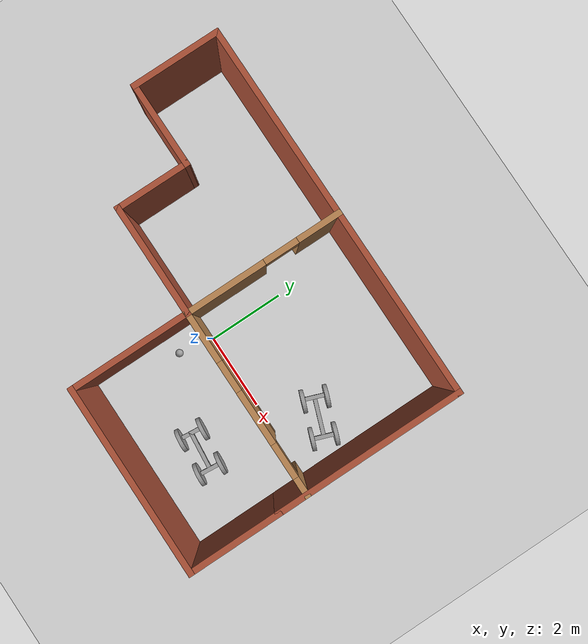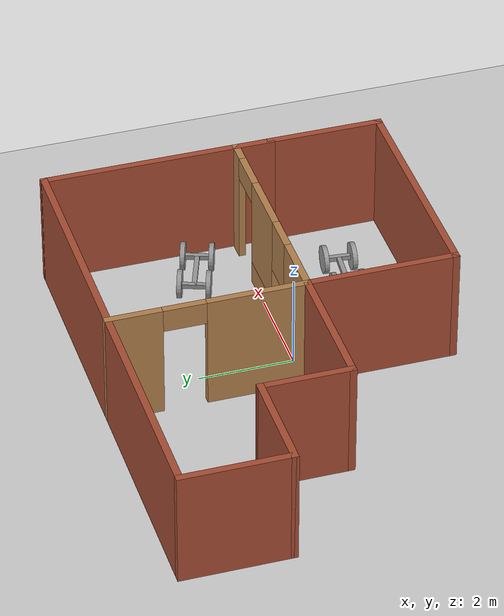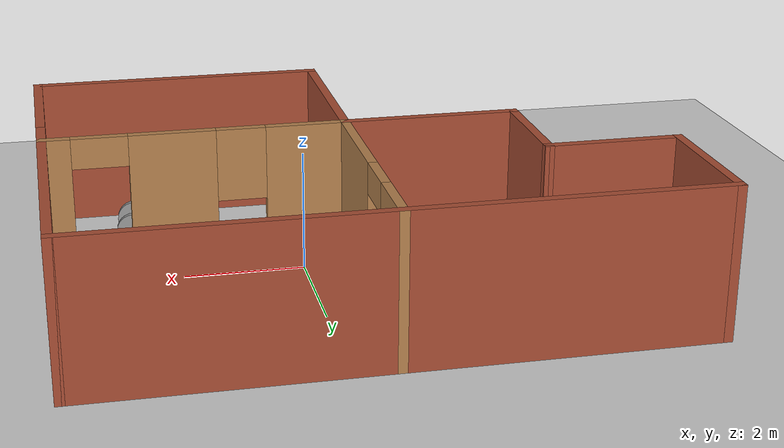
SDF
<sdf version="1.6">
 <world name="__default__">
  <plugin name="hello" filename="libhello.so"/>
  <gravity>0 0 -9.8</gravity>
  <magnetic_field>6e-06 2.3e-05 -4.2e-05</magnetic_field>
  <atmosphere type="adiabatic"/>
  <physics name="default_physics" default="0" type="ode">
   <max_step_size>0.001</max_step_size>
   <real_time_factor>1</real_time_factor>
   <real_time_update_rate>1000</real_time_update_rate>
  </physics>
  <scene><ambient>0.4 0.4 0.4 1</ambient><background>0.7 0.7 0.7 1</background><shadows>1</shadows></scene>
  <spherical_coordinates>
   <surface_model>EARTH_WGS84</surface_model>
   <latitude_deg>0</latitude_deg>
   <longitude_deg>0</longitude_deg>
   <elevation>0</elevation>
   <heading_deg>0</heading_deg>
  </spherical_coordinates>
  <model name="mybuilding">
   <pose>-0.78249 0.44973 0 0 -0 0</pose>
   <link name="Wall_10">
    <collision name="Wall_10_Collision">
     <geometry><box><size>2.30025 0.15 2.5</size></box></geometry>
     <pose>0 0 1.25 0 -0 0</pose>
    </collision>
    <visual name="Wall_10_Visual">
     <pose>0 0 1.25 0 -0 0</pose>
     <geometry><box><size>2.30025 0.15 2.5</size></box></geometry>
     <material>
      <script><uri>file://media/materials/scripts/gazebo.material</uri><name>Gazebo/Bricks</name></script>
      <ambient>1 1 1 1</ambient>
     </material>
     <meta><layer>0</layer></meta>
    </visual>
    <pose>-3.84999 1.34978 0 0 0 -3.14139</pose>
   </link>
   <link name="Wall_11">
    <collision name="Wall_11_Collision">
     <geometry><box><size>2.40056 0.15 2.5</size></box></geometry>
     <pose>0 0 1.25 0 -0 0</pose>
    </collision>
    <visual name="Wall_11_Visual">
     <pose>0 0 1.25 0 -0 0</pose>
     <geometry><box><size>2.40056 0.15 2.5</size></box></geometry>
     <material>
      <script><uri>file://media/materials/scripts/gazebo.material</uri><name>Gazebo/Bricks</name></script>
      <ambient>1 1 1 1</ambient>
     </material>
     <meta><layer>0</layer></meta>
    </visual>
    <pose>-4.92512 2.47456 0 0 -0 1.5708</pose>
   </link>
   <link name="Wall_13">
    <pose>2.50013 -0.500002 0 0 -0 0</pose>
    <visual name="Wall_13_Visual_0">
     <pose>-1.80816 0 1.25 0 -0 0</pose>
     <geometry><box><size>1.38368 0.15 2.5</size></box></geometry>
     <material>
      <script><uri>file://media/materials/scripts/gazebo.material</uri><name>Gazebo/Wood</name></script>
      <ambient>1 1 1 1</ambient>
     </material>
     <meta><layer>0</layer></meta>
    </visual>
    <collision name="Wall_13_Collision_0">
     <geometry><box><size>1.38368 0.15 2.5</size></box></geometry>
     <pose>-1.80816 0 1.25 0 -0 0</pose>
    </collision>
    <visual name="Wall_13_Visual_1">
     <pose>2.24096 0 1.25 0 -0 0</pose>
     <geometry><box><size>0.518074 0.15 2.5</size></box></geometry>
     <material>
      <script><uri>file://media/materials/scripts/gazebo.material</uri><name>Gazebo/Wood</name></script>
      <ambient>1 1 1 1</ambient>
     </material>
     <meta><layer>0</layer></meta>
    </visual>
    <collision name="Wall_13_Collision_1">
     <geometry><box><size>0.518074 0.15 2.5</size></box></geometry>
     <pose>2.24096 0 1.25 0 -0 0</pose>
    </collision>
    <visual name="Wall_13_Visual_2">
     <pose>-0.017199 0 0.25 0 -0 0</pose>
     <geometry><box><size>2.19825 0.15 0.5</size></box></geometry>
     <material>
      <script><uri>file://media/materials/scripts/gazebo.material</uri><name>Gazebo/Wood</name></script>
      <ambient>1 1 1 1</ambient>
     </material>
     <meta><layer>0</layer></meta>
    </visual>
    <collision name="Wall_13_Collision_2">
     <geometry><box><size>2.19825 0.15 0.5</size></box></geometry>
     <pose>-0.017199 0 0.25 0 -0 0</pose>
    </collision>
    <visual name="Wall_13_Visual_3">
     <pose>0.382801 0 1.5 0 -0 0</pose>
     <geometry><box><size>1.39825 0.15 2</size></box></geometry>
     <material>
      <script><uri>file://media/materials/scripts/gazebo.material</uri><name>Gazebo/Wood</name></script>
      <ambient>1 1 1 1</ambient>
     </material>
     <meta><layer>0</layer></meta>
    </visual>
    <collision name="Wall_13_Collision_3">
     <geometry><box><size>1.39825 0.15 2</size></box></geometry>
     <pose>0.382801 0 1.5 0 -0 0</pose>
    </collision>
    <visual name="Wall_13_Visual_4">
     <pose>-0.716324 0 1.9 0 -0 0</pose>
     <geometry><box><size>0.8 0.15 1.2</size></box></geometry>
     <material>
      <script><uri>file://media/materials/scripts/gazebo.material</uri><name>Gazebo/Wood</name></script>
      <ambient>1 1 1 1</ambient>
     </material>
     <meta><layer>0</layer></meta>
    </visual>
    <collision name="Wall_13_Collision_4">
     <geometry><box><size>0.8 0.15 1.2</size></box></geometry>
     <pose>-0.716324 0 1.9 0 -0 0</pose>
    </collision>
    <visual name="Wall_13_Visual_5">
     <pose>1.53193 0 2.25 0 -0 0</pose>
     <geometry><box><size>0.9 0.15 0.5</size></box></geometry>
     <material>
      <script><uri>file://media/materials/scripts/gazebo.material</uri><name>Gazebo/Wood</name></script>
      <ambient>1 1 1 1</ambient>
     </material>
     <meta><layer>0</layer></meta>
    </visual>
    <collision name="Wall_13_Collision_5">
     <geometry><box><size>0.9 0.15 0.5</size></box></geometry>
     <pose>1.53193 0 2.25 0 -0 0</pose>
    </collision>
   </link>
   <link name="Wall_15">
    <pose>0.075133 1.55 0 0 -0 1.5708</pose>
    <visual name="Wall_15_Visual_0">
     <pose>-1.04383 0 1.25 0 -0 0</pose>
     <geometry><box><size>2.16234 0.15 2.5</size></box></geometry>
     <material>
      <script><uri>file://media/materials/scripts/gazebo.material</uri><name>Gazebo/Wood</name></script>
      <ambient>1 1 1 1</ambient>
     </material>
     <meta><layer>0</layer></meta>
    </visual>
    <collision name="Wall_15_Collision_0">
     <geometry><box><size>2.16234 0.15 2.5</size></box></geometry>
     <pose>-1.04383 0 1.25 0 -0 0</pose>
    </collision>
    <visual name="Wall_15_Visual_1">
     <pose>1.53117 0 1.25 0 -0 0</pose>
     <geometry><box><size>1.18766 0.15 2.5</size></box></geometry>
     <material>
      <script><uri>file://media/materials/scripts/gazebo.material</uri><name>Gazebo/Wood</name></script>
      <ambient>1 1 1 1</ambient>
     </material>
     <meta><layer>0</layer></meta>
    </visual>
    <collision name="Wall_15_Collision_1">
     <geometry><box><size>1.18766 0.15 2.5</size></box></geometry>
     <pose>1.53117 0 1.25 0 -0 0</pose>
    </collision>
    <visual name="Wall_15_Visual_2">
     <pose>0.487335 0 2.25 0 -0 0</pose>
     <geometry><box><size>0.9 0.15 0.5</size></box></geometry>
     <material>
      <script><uri>file://media/materials/scripts/gazebo.material</uri><name>Gazebo/Wood</name></script>
      <ambient>1 1 1 1</ambient>
     </material>
     <meta><layer>0</layer></meta>
    </visual>
    <collision name="Wall_15_Collision_2">
     <geometry><box><size>0.9 0.15 0.5</size></box></geometry>
     <pose>0.487335 0 2.25 0 -0 0</pose>
    </collision>
   </link>
   <link name="Wall_3">
    <collision name="Wall_3_Collision">
     <geometry><box><size>10 0.15 2.5</size></box></geometry>
     <pose>0 0 1.25 0 -0 0</pose>
    </collision>
    <visual name="Wall_3_Visual">
     <pose>0 0 1.25 0 -0 0</pose>
     <geometry><box><size>10 0.15 2.5</size></box></geometry>
     <material>
      <script><uri>file://media/materials/scripts/gazebo.material</uri><name>Gazebo/Bricks</name></script>
      <ambient>1 1 1 1</ambient>
     </material>
     <meta><layer>0</layer></meta>
    </visual>
    <pose>8e-06 3.59978 0 0 -0 4.5e-05</pose>
   </link>
   <link name="Wall_4">
    <collision name="Wall_4_Collision">
     <geometry><box><size>5 0.15 2.5</size></box></geometry>
     <pose>0 0 1.25 0 -0 0</pose>
    </collision>
    <visual name="Wall_4_Visual">
     <pose>0 0 1.25 0 -0 0</pose>
     <geometry><box><size>5 0.15 2.5</size></box></geometry>
     <material>
      <script><uri>file://media/materials/scripts/gazebo.material</uri><name>Gazebo/Bricks</name></script>
      <ambient>1 1 1 1</ambient>
     </material>
     <meta><layer>0</layer></meta>
    </visual>
    <pose>4.92513 1.175 0 0 0 -1.5708</pose>
   </link>
   <link name="Wall_5">
    <collision name="Wall_5_Collision">
     <geometry><box><size>2.5 0.15 2.5</size></box></geometry>
     <pose>0 0 1.25 0 -0 0</pose>
    </collision>
    <visual name="Wall_5_Visual">
     <pose>0 0 1.25 0 -0 0</pose>
     <geometry><box><size>2.5 0.15 2.5</size></box></geometry>
     <material>
      <script><uri>file://media/materials/scripts/gazebo.material</uri><name>Gazebo/Bricks</name></script>
      <ambient>1 1 1 1</ambient>
     </material>
     <meta><layer>0</layer></meta>
    </visual>
    <pose>4.92513 -2.425 0 0 0 -1.5708</pose>
   </link>
   <link name="Wall_6">
    <collision name="Wall_6_Collision">
     <geometry><box><size>5 0.15 2.5</size></box></geometry>
     <pose>0 0 1.25 0 -0 0</pose>
    </collision>
    <visual name="Wall_6_Visual">
     <pose>0 0 1.25 0 -0 0</pose>
     <geometry><box><size>5 0.15 2.5</size></box></geometry>
     <material>
      <script><uri>file://media/materials/scripts/gazebo.material</uri><name>Gazebo/Bricks</name></script>
      <ambient>1 1 1 1</ambient>
     </material>
     <meta><layer>0</layer></meta>
    </visual>
    <pose>2.50013 -3.6 0 0 -0 3.14159</pose>
   </link>
   <link name="Wall_7">
    <collision name="Wall_7_Collision">
     <geometry><box><size>3.25 0.15 2.5</size></box></geometry>
     <pose>0 0 1.25 0 -0 0</pose>
    </collision>
    <visual name="Wall_7_Visual">
     <pose>0 0 1.25 0 -0 0</pose>
     <geometry><box><size>3.25 0.15 2.5</size></box></geometry>
     <material>
      <script><uri>file://media/materials/scripts/gazebo.material</uri><name>Gazebo/Bricks</name></script>
      <ambient>1 1 1 1</ambient>
     </material>
     <meta><layer>0</layer></meta>
    </visual>
    <pose>0.075133 -2.05 0 0 -0 1.5708</pose>
   </link>
   <link name="Wall_8">
    <collision name="Wall_8_Collision">
     <geometry><box><size>3 0.15 2.5</size></box></geometry>
     <pose>0 0 1.25 0 -0 0</pose>
    </collision>
    <visual name="Wall_8_Visual">
     <pose>0 0 1.25 0 -0 0</pose>
     <geometry><box><size>3 0.15 2.5</size></box></geometry>
     <material>
      <script><uri>file://media/materials/scripts/gazebo.material</uri><name>Gazebo/Bricks</name></script>
      <ambient>1 1 1 1</ambient>
     </material>
     <meta><layer>0</layer></meta>
    </visual>
    <pose>-1.34987 -0.500002 0 0 -0 3.14159</pose>
   </link>
   <link name="Wall_9">
    <collision name="Wall_9_Collision">
     <geometry><box><size>2 0.15 2.5</size></box></geometry>
     <pose>0 0 1.25 0 -0 0</pose>
    </collision>
    <visual name="Wall_9_Visual">
     <pose>0 0 1.25 0 -0 0</pose>
     <geometry><box><size>2 0.15 2.5</size></box></geometry>
     <material>
      <script><uri>file://media/materials/scripts/gazebo.material</uri><name>Gazebo/Bricks</name></script>
      <ambient>1 1 1 1</ambient>
     </material>
     <meta><layer>0</layer></meta>
    </visual>
    <pose>-2.77487 0.424998 0 0 -0 1.5708</pose>
   </link>
   <static>1</static>
  </model>
  <model name="myrobot">
   <link name="link_0">
    <pose>-1.72766 -2.77958 0.3 0 -0 0</pose>
    <inertial>
     <mass>1</mass>
     <inertia>
      <ixx>0.166667</ixx>
      <ixy>0</ixy>
      <ixz>0</ixz>
      <iyy>0.166667</iyy>
      <iyz>0</iyz>
      <izz>0.166667</izz>
     </inertia>
    </inertial>
    <visual name="visual">
     <geometry><box><size>0.1 0.5 0.1</size></box></geometry>
     <material>
      <lighting>1</lighting>
      <script><uri>file://media/materials/scripts/gazebo.material</uri><name>Gazebo/Grey</name></script>
      <shader type="pixel"><normal_map>__default__</normal_map></shader>
      <ambient>0.3 0.3 0.3 1</ambient>
      <diffuse>0.7 0.7 0.7 1</diffuse>
      <specular>0.01 0.01 0.01 1</specular>
      <emissive>0 0 0 1</emissive>
     </material>
    </visual>
    <collision name="collision">
     <geometry><box><size>0.1 0.5 0.1</size></box></geometry>
     <surface>
      <friction>
       <ode><mu>1</mu><mu2>1</mu2><fdir1>0 0 0</fdir1><slip1>0</slip1><slip2>0</slip2></ode>
       <torsional>
        <coefficient>1</coefficient>
        <patch_radius>0</patch_radius>
        <surface_radius>0</surface_radius>
        <use_patch_radius>1</use_patch_radius>
        <ode><slip>0</slip></ode>
       </torsional>
      </friction>
      <bounce><restitution_coefficient>0</restitution_coefficient><threshold>1e+06</threshold></bounce>
      <contact>
       <collide_without_contact>0</collide_without_contact>
       <collide_without_contact_bitmask>1</collide_without_contact_bitmask>
       <collide_bitmask>1</collide_bitmask>
       <ode>
        <soft_cfm>0</soft_cfm>
        <soft_erp>0.2</soft_erp>
        <kp>1e+13</kp>
        <kd>1</kd>
        <max_vel>0.01</max_vel>
        <min_depth>0</min_depth>
       </ode>
       <bullet>
        <split_impulse>1</split_impulse>
        <split_impulse_penetration_threshold>-0.01</split_impulse_penetration_threshold>
        <soft_cfm>0</soft_cfm>
        <soft_erp>0.2</soft_erp>
        <kp>1e+13</kp>
        <kd>1</kd>
       </bullet>
      </contact>
     </surface>
    </collision>
   </link>
   <link name="link_0_clone">
    <pose>-0.727578 -2.77958 0.3 0 -0 0</pose>
    <inertial>
     <mass>1</mass>
     <inertia>
      <ixx>0.166667</ixx>
      <ixy>0</ixy>
      <ixz>0</ixz>
      <iyy>0.166667</iyy>
      <iyz>0</iyz>
      <izz>0.166667</izz>
     </inertia>
    </inertial>
    <visual name="visual">
     <geometry><box><size>0.1 0.5 0.1</size></box></geometry>
     <material>
      <lighting>1</lighting>
      <script><uri>file://media/materials/scripts/gazebo.material</uri><name>Gazebo/Grey</name></script>
      <shader type="pixel"><normal_map>__default__</normal_map></shader>
      <ambient>0.3 0.3 0.3 1</ambient>
      <diffuse>0.7 0.7 0.7 1</diffuse>
      <specular>0.01 0.01 0.01 1</specular>
      <emissive>0 0 0 1</emissive>
     </material>
    </visual>
    <collision name="collision">
     <geometry><box><size>0.1 0.5 0.1</size></box></geometry>
     <surface>
      <friction>
       <ode><mu>1</mu><mu2>1</mu2><fdir1>0 0 0</fdir1><slip1>0</slip1><slip2>0</slip2></ode>
       <torsional>
        <coefficient>1</coefficient>
        <patch_radius>0</patch_radius>
        <surface_radius>0</surface_radius>
        <use_patch_radius>1</use_patch_radius>
        <ode><slip>0</slip></ode>
       </torsional>
      </friction>
      <bounce><restitution_coefficient>0</restitution_coefficient><threshold>1e+06</threshold></bounce>
      <contact>
       <collide_without_contact>0</collide_without_contact>
       <collide_without_contact_bitmask>1</collide_without_contact_bitmask>
       <collide_bitmask>1</collide_bitmask>
       <ode>
        <soft_cfm>0</soft_cfm>
        <soft_erp>0.2</soft_erp>
        <kp>1e+13</kp>
        <kd>1</kd>
        <max_vel>0.01</max_vel>
        <min_depth>0</min_depth>
       </ode>
       <bullet>
        <split_impulse>1</split_impulse>
        <split_impulse_penetration_threshold>-0.01</split_impulse_penetration_threshold>
        <soft_cfm>0</soft_cfm>
        <soft_erp>0.2</soft_erp>
        <kp>1e+13</kp>
        <kd>1</kd>
       </bullet>
      </contact>
     </surface>
    </collision>
   </link>
   <link name="link_1">
    <pose>-1.68266 -3.0796 0.3 1.5707 -0 0</pose>
    <inertial>
     <mass>1</mass>
     <inertia><ixx>0.145833</ixx><ixy>0</ixy><ixz>0</ixz><iyy>0.145833</iyy><iyz>0</iyz><izz>0.125</izz></inertia>
     <pose>0 0 -0.05 1.5707 -0 0</pose>
    </inertial>
    <visual name="visual">
     <geometry><cylinder><radius>0.3</radius><length>0.1</length></cylinder></geometry>
     <material>
      <lighting>1</lighting>
      <script><uri>file://media/materials/scripts/gazebo.material</uri><name>Gazebo/Grey</name></script>
      <shader type="pixel"><normal_map>__default__</normal_map></shader>
      <ambient>0.3 0.3 0.3 1</ambient>
      <diffuse>0.7 0.7 0.7 1</diffuse>
      <specular>0.01 0.01 0.01 1</specular>
      <emissive>0 0 0 1</emissive>
     </material>
    </visual>
    <collision name="collision">
     <geometry><cylinder><radius>0.3</radius><length>0.1</length></cylinder></geometry>
     <surface>
      <friction>
       <ode><mu>1</mu><mu2>1</mu2><fdir1>0 0 0</fdir1><slip1>0</slip1><slip2>0</slip2></ode>
       <torsional>
        <coefficient>1</coefficient>
        <patch_radius>0</patch_radius>
        <surface_radius>0</surface_radius>
        <use_patch_radius>1</use_patch_radius>
        <ode><slip>0</slip></ode>
       </torsional>
      </friction>
      <bounce><restitution_coefficient>0</restitution_coefficient><threshold>1e+06</threshold></bounce>
      <contact>
       <collide_without_contact>0</collide_without_contact>
       <collide_without_contact_bitmask>1</collide_without_contact_bitmask>
       <collide_bitmask>1</collide_bitmask>
       <ode>
        <soft_cfm>0</soft_cfm>
        <soft_erp>0.2</soft_erp>
        <kp>1e+13</kp>
        <kd>1</kd>
        <max_vel>0.01</max_vel>
        <min_depth>0</min_depth>
       </ode>
       <bullet>
        <split_impulse>1</split_impulse>
        <split_impulse_penetration_threshold>-0.01</split_impulse_penetration_threshold>
        <soft_cfm>0</soft_cfm>
        <soft_erp>0.2</soft_erp>
        <kp>1e+13</kp>
        <kd>1</kd>
       </bullet>
      </contact>
     </surface>
    </collision>
   </link>
   <link name="link_1_clone">
    <pose>-1.68266 -2.47955 0.3 1.5707 -0 0</pose>
    <inertial>
     <mass>1</mass>
     <inertia><ixx>0.145833</ixx><ixy>0</ixy><ixz>0</ixz><iyy>0.145833</iyy><iyz>0</iyz><izz>0.125</izz></inertia>
     <pose>0 0 -0.05 1.5707 -0 0</pose>
    </inertial>
    <visual name="visual">
     <geometry><cylinder><radius>0.3</radius><length>0.1</length></cylinder></geometry>
     <material>
      <lighting>1</lighting>
      <script><uri>file://media/materials/scripts/gazebo.material</uri><name>Gazebo/Grey</name></script>
      <shader type="pixel"><normal_map>__default__</normal_map></shader>
      <ambient>0.3 0.3 0.3 1</ambient>
      <diffuse>0.7 0.7 0.7 1</diffuse>
      <specular>0.01 0.01 0.01 1</specular>
      <emissive>0 0 0 1</emissive>
     </material>
    </visual>
    <collision name="collision">
     <geometry><cylinder><radius>0.3</radius><length>0.1</length></cylinder></geometry>
     <surface>
      <friction>
       <ode><mu>1</mu><mu2>1</mu2><fdir1>0 0 0</fdir1><slip1>0</slip1><slip2>0</slip2></ode>
       <torsional>
        <coefficient>1</coefficient>
        <patch_radius>0</patch_radius>
        <surface_radius>0</surface_radius>
        <use_patch_radius>1</use_patch_radius>
        <ode><slip>0</slip></ode>
       </torsional>
      </friction>
      <bounce><restitution_coefficient>0</restitution_coefficient><threshold>1e+06</threshold></bounce>
      <contact>
       <collide_without_contact>0</collide_without_contact>
       <collide_without_contact_bitmask>1</collide_without_contact_bitmask>
       <collide_bitmask>1</collide_bitmask>
       <ode>
        <soft_cfm>0</soft_cfm>
        <soft_erp>0.2</soft_erp>
        <kp>1e+13</kp>
        <kd>1</kd>
        <max_vel>0.01</max_vel>
        <min_depth>0</min_depth>
       </ode>
       <bullet>
        <split_impulse>1</split_impulse>
        <split_impulse_penetration_threshold>-0.01</split_impulse_penetration_threshold>
        <soft_cfm>0</soft_cfm>
        <soft_erp>0.2</soft_erp>
        <kp>1e+13</kp>
        <kd>1</kd>
       </bullet>
      </contact>
     </surface>
    </collision>
   </link>
   <link name="link_1_clone_0">
    <pose>-0.727578 -2.47955 0.3 1.5707 -0 0</pose>
    <inertial>
     <mass>1</mass>
     <inertia><ixx>0.145833</ixx><ixy>0</ixy><ixz>0</ixz><iyy>0.145833</iyy><iyz>0</iyz><izz>0.125</izz></inertia>
     <pose>0 0 -0.05 1.5707 -0 0</pose>
    </inertial>
    <visual name="visual">
     <geometry><cylinder><radius>0.3</radius><length>0.1</length></cylinder></geometry>
     <material>
      <lighting>1</lighting>
      <script><uri>file://media/materials/scripts/gazebo.material</uri><name>Gazebo/Grey</name></script>
      <shader type="pixel"><normal_map>__default__</normal_map></shader>
      <ambient>0.3 0.3 0.3 1</ambient>
      <diffuse>0.7 0.7 0.7 1</diffuse>
      <specular>0.01 0.01 0.01 1</specular>
      <emissive>0 0 0 1</emissive>
     </material>
    </visual>
    <collision name="collision">
     <geometry><cylinder><radius>0.3</radius><length>0.1</length></cylinder></geometry>
     <surface>
      <friction>
       <ode><mu>1</mu><mu2>1</mu2><fdir1>0 0 0</fdir1><slip1>0</slip1><slip2>0</slip2></ode>
       <torsional>
        <coefficient>1</coefficient>
        <patch_radius>0</patch_radius>
        <surface_radius>0</surface_radius>
        <use_patch_radius>1</use_patch_radius>
        <ode><slip>0</slip></ode>
       </torsional>
      </friction>
      <bounce><restitution_coefficient>0</restitution_coefficient><threshold>1e+06</threshold></bounce>
      <contact>
       <collide_without_contact>0</collide_without_contact>
       <collide_without_contact_bitmask>1</collide_without_contact_bitmask>
       <collide_bitmask>1</collide_bitmask>
       <ode>
        <soft_cfm>0</soft_cfm>
        <soft_erp>0.2</soft_erp>
        <kp>1e+13</kp>
        <kd>1</kd>
        <max_vel>0.01</max_vel>
        <min_depth>0</min_depth>
       </ode>
       <bullet>
        <split_impulse>1</split_impulse>
        <split_impulse_penetration_threshold>-0.01</split_impulse_penetration_threshold>
        <soft_cfm>0</soft_cfm>
        <soft_erp>0.2</soft_erp>
        <kp>1e+13</kp>
        <kd>1</kd>
       </bullet>
      </contact>
     </surface>
    </collision>
   </link>
   <link name="link_1_clone_1">
    <pose>-0.727578 -3.0796 0.3 1.5707 -0 0</pose>
    <inertial>
     <mass>1</mass>
     <inertia><ixx>0.145833</ixx><ixy>0</ixy><ixz>0</ixz><iyy>0.145833</iyy><iyz>0</iyz><izz>0.125</izz></inertia>
     <pose>0 0 -0.05 1.5707 -0 0</pose>
    </inertial>
    <visual name="visual">
     <geometry><cylinder><radius>0.3</radius><length>0.1</length></cylinder></geometry>
     <material>
      <lighting>1</lighting>
      <script><uri>file://media/materials/scripts/gazebo.material</uri><name>Gazebo/Grey</name></script>
      <shader type="pixel"><normal_map>__default__</normal_map></shader>
      <ambient>0.3 0.3 0.3 1</ambient>
      <diffuse>0.7 0.7 0.7 1</diffuse>
      <specular>0.01 0.01 0.01 1</specular>
      <emissive>0 0 0 1</emissive>
     </material>
    </visual>
    <collision name="collision">
     <geometry><cylinder><radius>0.3</radius><length>0.1</length></cylinder></geometry>
     <surface>
      <friction>
       <ode><mu>1</mu><mu2>1</mu2><fdir1>0 0 0</fdir1><slip1>0</slip1><slip2>0</slip2></ode>
       <torsional>
        <coefficient>1</coefficient>
        <patch_radius>0</patch_radius>
        <surface_radius>0</surface_radius>
        <use_patch_radius>1</use_patch_radius>
        <ode><slip>0</slip></ode>
       </torsional>
      </friction>
      <bounce><restitution_coefficient>0</restitution_coefficient><threshold>1e+06</threshold></bounce>
      <contact>
       <collide_without_contact>0</collide_without_contact>
       <collide_without_contact_bitmask>1</collide_without_contact_bitmask>
       <collide_bitmask>1</collide_bitmask>
       <ode>
        <soft_cfm>0</soft_cfm>
        <soft_erp>0.2</soft_erp>
        <kp>1e+13</kp>
        <kd>1</kd>
        <max_vel>0.01</max_vel>
        <min_depth>0</min_depth>
       </ode>
       <bullet>
        <split_impulse>1</split_impulse>
        <split_impulse_penetration_threshold>-0.01</split_impulse_penetration_threshold>
        <soft_cfm>0</soft_cfm>
        <soft_erp>0.2</soft_erp>
        <kp>1e+13</kp>
        <kd>1</kd>
       </bullet>
      </contact>
     </surface>
    </collision>
   </link>
   <link name="link_2">
    <pose>-1.27758 -2.77958 0.3 0 -0 0</pose>
    <inertial>
     <mass>1</mass>
     <inertia>
      <ixx>0.166667</ixx>
      <ixy>0</ixy>
      <ixz>0</ixz>
      <iyy>0.166667</iyy>
      <iyz>0</iyz>
      <izz>0.166667</izz>
     </inertia>
    </inertial>
    <visual name="visual">
     <geometry><box><size>1 0.1 0.1</size></box></geometry>
     <material>
      <lighting>1</lighting>
      <script><uri>file://media/materials/scripts/gazebo.material</uri><name>Gazebo/Grey</name></script>
      <shader type="pixel"><normal_map>__default__</normal_map></shader>
      <ambient>0.3 0.3 0.3 1</ambient>
      <diffuse>0.7 0.7 0.7 1</diffuse>
      <specular>0.01 0.01 0.01 1</specular>
      <emissive>0 0 0 1</emissive>
     </material>
    </visual>
    <collision name="collision">
     <geometry><box><size>1 0.1 0.1</size></box></geometry>
     <surface>
      <friction>
       <ode><mu>1</mu><mu2>1</mu2><fdir1>0 0 0</fdir1><slip1>0</slip1><slip2>0</slip2></ode>
       <torsional>
        <coefficient>1</coefficient>
        <patch_radius>0</patch_radius>
        <surface_radius>0</surface_radius>
        <use_patch_radius>1</use_patch_radius>
        <ode><slip>0</slip></ode>
       </torsional>
      </friction>
      <bounce><restitution_coefficient>0</restitution_coefficient><threshold>1e+06</threshold></bounce>
      <contact>
       <collide_without_contact>0</collide_without_contact>
       <collide_without_contact_bitmask>1</collide_without_contact_bitmask>
       <collide_bitmask>1</collide_bitmask>
       <ode>
        <soft_cfm>0</soft_cfm>
        <soft_erp>0.2</soft_erp>
        <kp>1e+13</kp>
        <kd>1</kd>
        <max_vel>0.01</max_vel>
        <min_depth>0</min_depth>
       </ode>
       <bullet>
        <split_impulse>1</split_impulse>
        <split_impulse_penetration_threshold>-0.01</split_impulse_penetration_threshold>
        <soft_cfm>0</soft_cfm>
        <soft_erp>0.2</soft_erp>
        <kp>1e+13</kp>
        <kd>1</kd>
       </bullet>
      </contact>
     </surface>
    </collision>
   </link>
   <joint name="link_0_JOINT_1" type="revolute">
    <parent>link_0</parent>
    <child>link_1</child>
    <axis>
     <xyz>0 0 1</xyz>
     <use_parent_model_frame>0</use_parent_model_frame>
     <limit>
      <lower>-1.79769e+308</lower>
      <upper>1.79769e+308</upper>
      <effort>-1</effort>
      <velocity>-1</velocity>
     </limit>
     <dynamics>
      <spring_reference>0</spring_reference>
      <spring_stiffness>0</spring_stiffness>
      <damping>0</damping>
     </dynamics>
    </axis>
    <physics>
     <ode><limit><cfm>0</cfm><erp>0.2</erp></limit><suspension><cfm>0</cfm><erp>0.2</erp></suspension></ode>
    </physics>
   </joint>
   <joint name="link_0_JOINT_2" type="revolute">
    <parent>link_0</parent>
    <child>link_1_clone</child>
    <axis>
     <xyz>0 0 1</xyz>
     <use_parent_model_frame>0</use_parent_model_frame>
     <limit>
      <lower>-1.79769e+308</lower>
      <upper>1.79769e+308</upper>
      <effort>-1</effort>
      <velocity>-1</velocity>
     </limit>
     <dynamics>
      <spring_reference>0</spring_reference>
      <spring_stiffness>0</spring_stiffness>
      <damping>0</damping>
     </dynamics>
    </axis>
    <physics>
     <ode><limit><cfm>0</cfm><erp>0.2</erp></limit><suspension><cfm>0</cfm><erp>0.2</erp></suspension></ode>
    </physics>
   </joint>
   <joint name="link_0_JOINT_4" type="fixed">
    <parent>link_0</parent>
    <child>link_2</child>
    <physics>
     <ode><limit><cfm>0</cfm><erp>0.2</erp></limit><suspension><cfm>0</cfm><erp>0.2</erp></suspension></ode>
    </physics>
   </joint>
   <joint name="link_0_clone_JOINT_7" type="revolute">
    <parent>link_0_clone</parent>
    <child>link_1_clone_1</child>
    <axis>
     <xyz>0 0 1</xyz>
     <use_parent_model_frame>0</use_parent_model_frame>
     <limit>
      <lower>-1.79769e+308</lower>
      <upper>1.79769e+308</upper>
      <effort>-1</effort>
      <velocity>-1</velocity>
     </limit>
     <dynamics>
      <spring_reference>0</spring_reference>
      <spring_stiffness>0</spring_stiffness>
      <damping>0</damping>
     </dynamics>
    </axis>
    <physics>
     <ode><limit><cfm>0</cfm><erp>0.2</erp></limit><suspension><cfm>0</cfm><erp>0.2</erp></suspension></ode>
    </physics>
   </joint>
   <joint name="link_1_clone_0_JOINT_6" type="revolute">
    <parent>link_0_clone</parent>
    <child>link_1_clone_0</child>
    <axis>
     <xyz>0 0 1</xyz>
     <use_parent_model_frame>0</use_parent_model_frame>
     <limit>
      <lower>-1.79769e+308</lower>
      <upper>1.79769e+308</upper>
      <effort>-1</effort>
      <velocity>-1</velocity>
     </limit>
     <dynamics>
      <spring_reference>0</spring_reference>
      <spring_stiffness>0</spring_stiffness>
      <damping>0</damping>
     </dynamics>
    </axis>
    <physics>
     <ode><limit><cfm>0</cfm><erp>0.2</erp></limit><suspension><cfm>0</cfm><erp>0.2</erp></suspension></ode>
    </physics>
   </joint>
   <joint name="link_2_JOINT_5" type="fixed">
    <parent>link_2</parent>
    <child>link_0_clone</child>
    <physics>
     <ode><limit><cfm>0</cfm><erp>0.2</erp></limit><suspension><cfm>0</cfm><erp>0.2</erp></suspension></ode>
    </physics>
   </joint>
   <static>0</static>
   <pose>5.20142 3.33477 -1e-06 -2e-06 -0 -0.352258</pose>
  </model>
  <model name="myrobot_clone">
   <link name="link_0">
    <pose>-1.72766 -2.77958 0.3 0 -0 0</pose>
    <inertial>
     <mass>1</mass>
     <inertia>
      <ixx>0.166667</ixx>
      <ixy>0</ixy>
      <ixz>0</ixz>
      <iyy>0.166667</iyy>
      <iyz>0</iyz>
      <izz>0.166667</izz>
     </inertia>
    </inertial>
    <visual name="visual">
     <geometry><box><size>0.1 0.5 0.1</size></box></geometry>
     <material>
      <lighting>1</lighting>
      <script><uri>file://media/materials/scripts/gazebo.material</uri><name>Gazebo/Grey</name></script>
      <shader type="pixel"><normal_map>__default__</normal_map></shader>
      <ambient>0.3 0.3 0.3 1</ambient>
      <diffuse>0.7 0.7 0.7 1</diffuse>
      <specular>0.01 0.01 0.01 1</specular>
      <emissive>0 0 0 1</emissive>
     </material>
    </visual>
    <collision name="collision">
     <geometry><box><size>0.1 0.5 0.1</size></box></geometry>
     <surface>
      <friction>
       <ode><mu>1</mu><mu2>1</mu2><fdir1>0 0 0</fdir1><slip1>0</slip1><slip2>0</slip2></ode>
       <torsional>
        <coefficient>1</coefficient>
        <patch_radius>0</patch_radius>
        <surface_radius>0</surface_radius>
        <use_patch_radius>1</use_patch_radius>
        <ode><slip>0</slip></ode>
       </torsional>
      </friction>
      <bounce><restitution_coefficient>0</restitution_coefficient><threshold>1e+06</threshold></bounce>
      <contact>
       <collide_without_contact>0</collide_without_contact>
       <collide_without_contact_bitmask>1</collide_without_contact_bitmask>
       <collide_bitmask>1</collide_bitmask>
       <ode>
        <soft_cfm>0</soft_cfm>
        <soft_erp>0.2</soft_erp>
        <kp>1e+13</kp>
        <kd>1</kd>
        <max_vel>0.01</max_vel>
        <min_depth>0</min_depth>
       </ode>
       <bullet>
        <split_impulse>1</split_impulse>
        <split_impulse_penetration_threshold>-0.01</split_impulse_penetration_threshold>
        <soft_cfm>0</soft_cfm>
        <soft_erp>0.2</soft_erp>
        <kp>1e+13</kp>
        <kd>1</kd>
       </bullet>
      </contact>
     </surface>
    </collision>
   </link>
   <link name="link_0_clone">
    <pose>-0.727578 -2.77958 0.3 0 -0 0</pose>
    <inertial>
     <mass>1</mass>
     <inertia>
      <ixx>0.166667</ixx>
      <ixy>0</ixy>
      <ixz>0</ixz>
      <iyy>0.166667</iyy>
      <iyz>0</iyz>
      <izz>0.166667</izz>
     </inertia>
    </inertial>
    <visual name="visual">
     <geometry><box><size>0.1 0.5 0.1</size></box></geometry>
     <material>
      <lighting>1</lighting>
      <script><uri>file://media/materials/scripts/gazebo.material</uri><name>Gazebo/Grey</name></script>
      <shader type="pixel"><normal_map>__default__</normal_map></shader>
      <ambient>0.3 0.3 0.3 1</ambient>
      <diffuse>0.7 0.7 0.7 1</diffuse>
      <specular>0.01 0.01 0.01 1</specular>
      <emissive>0 0 0 1</emissive>
     </material>
    </visual>
    <collision name="collision">
     <geometry><box><size>0.1 0.5 0.1</size></box></geometry>
     <surface>
      <friction>
       <ode><mu>1</mu><mu2>1</mu2><fdir1>0 0 0</fdir1><slip1>0</slip1><slip2>0</slip2></ode>
       <torsional>
        <coefficient>1</coefficient>
        <patch_radius>0</patch_radius>
        <surface_radius>0</surface_radius>
        <use_patch_radius>1</use_patch_radius>
        <ode><slip>0</slip></ode>
       </torsional>
      </friction>
      <bounce><restitution_coefficient>0</restitution_coefficient><threshold>1e+06</threshold></bounce>
      <contact>
       <collide_without_contact>0</collide_without_contact>
       <collide_without_contact_bitmask>1</collide_without_contact_bitmask>
       <collide_bitmask>1</collide_bitmask>
       <ode>
        <soft_cfm>0</soft_cfm>
        <soft_erp>0.2</soft_erp>
        <kp>1e+13</kp>
        <kd>1</kd>
        <max_vel>0.01</max_vel>
        <min_depth>0</min_depth>
       </ode>
       <bullet>
        <split_impulse>1</split_impulse>
        <split_impulse_penetration_threshold>-0.01</split_impulse_penetration_threshold>
        <soft_cfm>0</soft_cfm>
        <soft_erp>0.2</soft_erp>
        <kp>1e+13</kp>
        <kd>1</kd>
       </bullet>
      </contact>
     </surface>
    </collision>
   </link>
   <link name="link_1">
    <pose>-1.68266 -3.0796 0.3 1.5707 -0 0</pose>
    <inertial>
     <mass>1</mass>
     <inertia><ixx>0.145833</ixx><ixy>0</ixy><ixz>0</ixz><iyy>0.145833</iyy><iyz>0</iyz><izz>0.125</izz></inertia>
     <pose>0 0 -0.05 1.5707 -0 0</pose>
    </inertial>
    <visual name="visual">
     <geometry><cylinder><radius>0.3</radius><length>0.1</length></cylinder></geometry>
     <material>
      <lighting>1</lighting>
      <script><uri>file://media/materials/scripts/gazebo.material</uri><name>Gazebo/Grey</name></script>
      <shader type="pixel"><normal_map>__default__</normal_map></shader>
      <ambient>0.3 0.3 0.3 1</ambient>
      <diffuse>0.7 0.7 0.7 1</diffuse>
      <specular>0.01 0.01 0.01 1</specular>
      <emissive>0 0 0 1</emissive>
     </material>
    </visual>
    <collision name="collision">
     <geometry><cylinder><radius>0.3</radius><length>0.1</length></cylinder></geometry>
     <surface>
      <friction>
       <ode><mu>1</mu><mu2>1</mu2><fdir1>0 0 0</fdir1><slip1>0</slip1><slip2>0</slip2></ode>
       <torsional>
        <coefficient>1</coefficient>
        <patch_radius>0</patch_radius>
        <surface_radius>0</surface_radius>
        <use_patch_radius>1</use_patch_radius>
        <ode><slip>0</slip></ode>
       </torsional>
      </friction>
      <bounce><restitution_coefficient>0</restitution_coefficient><threshold>1e+06</threshold></bounce>
      <contact>
       <collide_without_contact>0</collide_without_contact>
       <collide_without_contact_bitmask>1</collide_without_contact_bitmask>
       <collide_bitmask>1</collide_bitmask>
       <ode>
        <soft_cfm>0</soft_cfm>
        <soft_erp>0.2</soft_erp>
        <kp>1e+13</kp>
        <kd>1</kd>
        <max_vel>0.01</max_vel>
        <min_depth>0</min_depth>
       </ode>
       <bullet>
        <split_impulse>1</split_impulse>
        <split_impulse_penetration_threshold>-0.01</split_impulse_penetration_threshold>
        <soft_cfm>0</soft_cfm>
        <soft_erp>0.2</soft_erp>
        <kp>1e+13</kp>
        <kd>1</kd>
       </bullet>
      </contact>
     </surface>
    </collision>
   </link>
   <link name="link_1_clone">
    <pose>-1.68266 -2.47955 0.3 1.5707 -0 0</pose>
    <inertial>
     <mass>1</mass>
     <inertia><ixx>0.145833</ixx><ixy>0</ixy><ixz>0</ixz><iyy>0.145833</iyy><iyz>0</iyz><izz>0.125</izz></inertia>
     <pose>0 0 -0.05 1.5707 -0 0</pose>
    </inertial>
    <visual name="visual">
     <geometry><cylinder><radius>0.3</radius><length>0.1</length></cylinder></geometry>
     <material>
      <lighting>1</lighting>
      <script><uri>file://media/materials/scripts/gazebo.material</uri><name>Gazebo/Grey</name></script>
      <shader type="pixel"><normal_map>__default__</normal_map></shader>
      <ambient>0.3 0.3 0.3 1</ambient>
      <diffuse>0.7 0.7 0.7 1</diffuse>
      <specular>0.01 0.01 0.01 1</specular>
      <emissive>0 0 0 1</emissive>
     </material>
    </visual>
    <collision name="collision">
     <geometry><cylinder><radius>0.3</radius><length>0.1</length></cylinder></geometry>
     <surface>
      <friction>
       <ode><mu>1</mu><mu2>1</mu2><fdir1>0 0 0</fdir1><slip1>0</slip1><slip2>0</slip2></ode>
       <torsional>
        <coefficient>1</coefficient>
        <patch_radius>0</patch_radius>
        <surface_radius>0</surface_radius>
        <use_patch_radius>1</use_patch_radius>
        <ode><slip>0</slip></ode>
       </torsional>
      </friction>
      <bounce><restitution_coefficient>0</restitution_coefficient><threshold>1e+06</threshold></bounce>
      <contact>
       <collide_without_contact>0</collide_without_contact>
       <collide_without_contact_bitmask>1</collide_without_contact_bitmask>
       <collide_bitmask>1</collide_bitmask>
       <ode>
        <soft_cfm>0</soft_cfm>
        <soft_erp>0.2</soft_erp>
        <kp>1e+13</kp>
        <kd>1</kd>
        <max_vel>0.01</max_vel>
        <min_depth>0</min_depth>
       </ode>
       <bullet>
        <split_impulse>1</split_impulse>
        <split_impulse_penetration_threshold>-0.01</split_impulse_penetration_threshold>
        <soft_cfm>0</soft_cfm>
        <soft_erp>0.2</soft_erp>
        <kp>1e+13</kp>
        <kd>1</kd>
       </bullet>
      </contact>
     </surface>
    </collision>
   </link>
   <link name="link_1_clone_0">
    <pose>-0.727578 -2.47955 0.3 1.5707 -0 0</pose>
    <inertial>
     <mass>1</mass>
     <inertia><ixx>0.145833</ixx><ixy>0</ixy><ixz>0</ixz><iyy>0.145833</iyy><iyz>0</iyz><izz>0.125</izz></inertia>
     <pose>0 0 -0.05 1.5707 -0 0</pose>
    </inertial>
    <visual name="visual">
     <geometry><cylinder><radius>0.3</radius><length>0.1</length></cylinder></geometry>
     <material>
      <lighting>1</lighting>
      <script><uri>file://media/materials/scripts/gazebo.material</uri><name>Gazebo/Grey</name></script>
      <shader type="pixel"><normal_map>__default__</normal_map></shader>
      <ambient>0.3 0.3 0.3 1</ambient>
      <diffuse>0.7 0.7 0.7 1</diffuse>
      <specular>0.01 0.01 0.01 1</specular>
      <emissive>0 0 0 1</emissive>
     </material>
    </visual>
    <collision name="collision">
     <geometry><cylinder><radius>0.3</radius><length>0.1</length></cylinder></geometry>
     <surface>
      <friction>
       <ode><mu>1</mu><mu2>1</mu2><fdir1>0 0 0</fdir1><slip1>0</slip1><slip2>0</slip2></ode>
       <torsional>
        <coefficient>1</coefficient>
        <patch_radius>0</patch_radius>
        <surface_radius>0</surface_radius>
        <use_patch_radius>1</use_patch_radius>
        <ode><slip>0</slip></ode>
       </torsional>
      </friction>
      <bounce><restitution_coefficient>0</restitution_coefficient><threshold>1e+06</threshold></bounce>
      <contact>
       <collide_without_contact>0</collide_without_contact>
       <collide_without_contact_bitmask>1</collide_without_contact_bitmask>
       <collide_bitmask>1</collide_bitmask>
       <ode>
        <soft_cfm>0</soft_cfm>
        <soft_erp>0.2</soft_erp>
        <kp>1e+13</kp>
        <kd>1</kd>
        <max_vel>0.01</max_vel>
        <min_depth>0</min_depth>
       </ode>
       <bullet>
        <split_impulse>1</split_impulse>
        <split_impulse_penetration_threshold>-0.01</split_impulse_penetration_threshold>
        <soft_cfm>0</soft_cfm>
        <soft_erp>0.2</soft_erp>
        <kp>1e+13</kp>
        <kd>1</kd>
       </bullet>
      </contact>
     </surface>
    </collision>
   </link>
   <link name="link_1_clone_1">
    <pose>-0.727578 -3.0796 0.3 1.5707 -0 0</pose>
    <inertial>
     <mass>1</mass>
     <inertia><ixx>0.145833</ixx><ixy>0</ixy><ixz>0</ixz><iyy>0.145833</iyy><iyz>0</iyz><izz>0.125</izz></inertia>
     <pose>0 0 -0.05 1.5707 -0 0</pose>
    </inertial>
    <visual name="visual">
     <geometry><cylinder><radius>0.3</radius><length>0.1</length></cylinder></geometry>
     <material>
      <lighting>1</lighting>
      <script><uri>file://media/materials/scripts/gazebo.material</uri><name>Gazebo/Grey</name></script>
      <shader type="pixel"><normal_map>__default__</normal_map></shader>
      <ambient>0.3 0.3 0.3 1</ambient>
      <diffuse>0.7 0.7 0.7 1</diffuse>
      <specular>0.01 0.01 0.01 1</specular>
      <emissive>0 0 0 1</emissive>
     </material>
    </visual>
    <collision name="collision">
     <geometry><cylinder><radius>0.3</radius><length>0.1</length></cylinder></geometry>
     <surface>
      <friction>
       <ode><mu>1</mu><mu2>1</mu2><fdir1>0 0 0</fdir1><slip1>0</slip1><slip2>0</slip2></ode>
       <torsional>
        <coefficient>1</coefficient>
        <patch_radius>0</patch_radius>
        <surface_radius>0</surface_radius>
        <use_patch_radius>1</use_patch_radius>
        <ode><slip>0</slip></ode>
       </torsional>
      </friction>
      <bounce><restitution_coefficient>0</restitution_coefficient><threshold>1e+06</threshold></bounce>
      <contact>
       <collide_without_contact>0</collide_without_contact>
       <collide_without_contact_bitmask>1</collide_without_contact_bitmask>
       <collide_bitmask>1</collide_bitmask>
       <ode>
        <soft_cfm>0</soft_cfm>
        <soft_erp>0.2</soft_erp>
        <kp>1e+13</kp>
        <kd>1</kd>
        <max_vel>0.01</max_vel>
        <min_depth>0</min_depth>
       </ode>
       <bullet>
        <split_impulse>1</split_impulse>
        <split_impulse_penetration_threshold>-0.01</split_impulse_penetration_threshold>
        <soft_cfm>0</soft_cfm>
        <soft_erp>0.2</soft_erp>
        <kp>1e+13</kp>
        <kd>1</kd>
       </bullet>
      </contact>
     </surface>
    </collision>
   </link>
   <link name="link_2">
    <pose>-1.27758 -2.77958 0.3 0 -0 0</pose>
    <inertial>
     <mass>1</mass>
     <inertia>
      <ixx>0.166667</ixx>
      <ixy>0</ixy>
      <ixz>0</ixz>
      <iyy>0.166667</iyy>
      <iyz>0</iyz>
      <izz>0.166667</izz>
     </inertia>
    </inertial>
    <visual name="visual">
     <geometry><box><size>1 0.1 0.1</size></box></geometry>
     <material>
      <lighting>1</lighting>
      <script><uri>file://media/materials/scripts/gazebo.material</uri><name>Gazebo/Grey</name></script>
      <shader type="pixel"><normal_map>__default__</normal_map></shader>
      <ambient>0.3 0.3 0.3 1</ambient>
      <diffuse>0.7 0.7 0.7 1</diffuse>
      <specular>0.01 0.01 0.01 1</specular>
      <emissive>0 0 0 1</emissive>
     </material>
    </visual>
    <collision name="collision">
     <geometry><box><size>1 0.1 0.1</size></box></geometry>
     <surface>
      <friction>
       <ode><mu>1</mu><mu2>1</mu2><fdir1>0 0 0</fdir1><slip1>0</slip1><slip2>0</slip2></ode>
       <torsional>
        <coefficient>1</coefficient>
        <patch_radius>0</patch_radius>
        <surface_radius>0</surface_radius>
        <use_patch_radius>1</use_patch_radius>
        <ode><slip>0</slip></ode>
       </torsional>
      </friction>
      <bounce><restitution_coefficient>0</restitution_coefficient><threshold>1e+06</threshold></bounce>
      <contact>
       <collide_without_contact>0</collide_without_contact>
       <collide_without_contact_bitmask>1</collide_without_contact_bitmask>
       <collide_bitmask>1</collide_bitmask>
       <ode>
        <soft_cfm>0</soft_cfm>
        <soft_erp>0.2</soft_erp>
        <kp>1e+13</kp>
        <kd>1</kd>
        <max_vel>0.01</max_vel>
        <min_depth>0</min_depth>
       </ode>
       <bullet>
        <split_impulse>1</split_impulse>
        <split_impulse_penetration_threshold>-0.01</split_impulse_penetration_threshold>
        <soft_cfm>0</soft_cfm>
        <soft_erp>0.2</soft_erp>
        <kp>1e+13</kp>
        <kd>1</kd>
       </bullet>
      </contact>
     </surface>
    </collision>
   </link>
   <joint name="link_0_JOINT_1" type="revolute">
    <parent>link_0</parent>
    <child>link_1</child>
    <axis>
     <xyz>0 0 1</xyz>
     <use_parent_model_frame>0</use_parent_model_frame>
     <limit>
      <lower>-1.79769e+308</lower>
      <upper>1.79769e+308</upper>
      <effort>-1</effort>
      <velocity>-1</velocity>
     </limit>
     <dynamics>
      <spring_reference>0</spring_reference>
      <spring_stiffness>0</spring_stiffness>
      <damping>0</damping>
     </dynamics>
    </axis>
    <physics>
     <ode><limit><cfm>0</cfm><erp>0.2</erp></limit><suspension><cfm>0</cfm><erp>0.2</erp></suspension></ode>
    </physics>
   </joint>
   <joint name="link_0_JOINT_2" type="revolute">
    <parent>link_0</parent>
    <child>link_1_clone</child>
    <axis>
     <xyz>0 0 1</xyz>
     <use_parent_model_frame>0</use_parent_model_frame>
     <limit>
      <lower>-1.79769e+308</lower>
      <upper>1.79769e+308</upper>
      <effort>-1</effort>
      <velocity>-1</velocity>
     </limit>
     <dynamics>
      <spring_reference>0</spring_reference>
      <spring_stiffness>0</spring_stiffness>
      <damping>0</damping>
     </dynamics>
    </axis>
    <physics>
     <ode><limit><cfm>0</cfm><erp>0.2</erp></limit><suspension><cfm>0</cfm><erp>0.2</erp></suspension></ode>
    </physics>
   </joint>
   <joint name="link_0_JOINT_4" type="fixed">
    <parent>link_0</parent>
    <child>link_2</child>
    <physics>
     <ode><limit><cfm>0</cfm><erp>0.2</erp></limit><suspension><cfm>0</cfm><erp>0.2</erp></suspension></ode>
    </physics>
   </joint>
   <joint name="link_0_clone_JOINT_7" type="revolute">
    <parent>link_0_clone</parent>
    <child>link_1_clone_1</child>
    <axis>
     <xyz>0 0 1</xyz>
     <use_parent_model_frame>0</use_parent_model_frame>
     <limit>
      <lower>-1.79769e+308</lower>
      <upper>1.79769e+308</upper>
      <effort>-1</effort>
      <velocity>-1</velocity>
     </limit>
     <dynamics>
      <spring_reference>0</spring_reference>
      <spring_stiffness>0</spring_stiffness>
      <damping>0</damping>
     </dynamics>
    </axis>
    <physics>
     <ode><limit><cfm>0</cfm><erp>0.2</erp></limit><suspension><cfm>0</cfm><erp>0.2</erp></suspension></ode>
    </physics>
   </joint>
   <joint name="link_1_clone_0_JOINT_6" type="revolute">
    <parent>link_0_clone</parent>
    <child>link_1_clone_0</child>
    <axis>
     <xyz>0 0 1</xyz>
     <use_parent_model_frame>0</use_parent_model_frame>
     <limit>
      <lower>-1.79769e+308</lower>
      <upper>1.79769e+308</upper>
      <effort>-1</effort>
      <velocity>-1</velocity>
     </limit>
     <dynamics>
      <spring_reference>0</spring_reference>
      <spring_stiffness>0</spring_stiffness>
      <damping>0</damping>
     </dynamics>
    </axis>
    <physics>
     <ode><limit><cfm>0</cfm><erp>0.2</erp></limit><suspension><cfm>0</cfm><erp>0.2</erp></suspension></ode>
    </physics>
   </joint>
   <joint name="link_2_JOINT_5" type="fixed">
    <parent>link_2</parent>
    <child>link_0_clone</child>
    <physics>
     <ode><limit><cfm>0</cfm><erp>0.2</erp></limit><suspension><cfm>0</cfm><erp>0.2</erp></suspension></ode>
    </physics>
   </joint>
   <static>0</static>
   <pose>3.64346 0.876479 1.2e-05 3e-06 -0 -0.093544</pose>
  </model>
  <model name="ground_plane">
   <static>1</static>
   <link name="link">
    <collision name="collision">
     <geometry><plane><normal>0 0 1</normal><size>100 100</size></plane></geometry>
     <surface>
      <contact><collide_bitmask>65535</collide_bitmask></contact>
      <friction><ode><mu>100</mu><mu2>50</mu2></ode></friction>
     </surface>
    </collision>
    <visual name="visual">
     <cast_shadows>0</cast_shadows>
     <geometry><plane><normal>0 0 1</normal><size>100 100</size></plane></geometry>
     <material>
      <script><uri>file://media/materials/scripts/gazebo.material</uri><name>Gazebo/Grey</name></script>
     </material>
    </visual>
   </link>
   <pose>6.29071 0.786283 0 0 -0 0</pose>
  </model>
  <light name="user_directional_light_0" type="directional">
   <pose>-3.91448 -3.66042 1 0 -0 0</pose>
   <diffuse>0.5 0.5 0.5 1</diffuse>
   <specular>0.1 0.1 0.1 1</specular>
   <direction>0.1 0.1 -0.9</direction>
   <attenuation>
    <range>20</range>
    <constant>0.5</constant>
    <linear>0.01</linear>
    <quadratic>0.001</quadratic>
   </attenuation>
  </light>
  <model name="my_ball">
   <link name="link_0">
    <inertial>
     <mass>1</mass>
     <inertia><ixx>0.1</ixx><ixy>0</ixy><ixz>0</ixz><iyy>0.1</iyy><iyz>0</iyz><izz>0.1</izz></inertia>
    </inertial>
    <visual name="visual">
     <geometry><sphere><radius>0.1</radius></sphere></geometry>
     <material>
      <lighting>1</lighting>
      <script><uri>file://media/materials/scripts/gazebo.material</uri><name>Gazebo/Grey</name></script>
      <shader type="pixel"><normal_map>__default__</normal_map></shader>
      <ambient>1 1 1 1</ambient>
      <diffuse>1 1 1 1</diffuse>
      <specular>1 1 1 1</specular>
      <emissive>1 1 1 1</emissive>
     </material>
    </visual>
    <collision name="collision">
     <geometry><sphere><radius>0.1</radius></sphere></geometry>
     <surface>
      <friction>
       <ode><mu>1</mu><mu2>1</mu2><fdir1>0 0 0</fdir1><slip1>0</slip1><slip2>0</slip2></ode>
       <torsional>
        <coefficient>1</coefficient>
        <patch_radius>0</patch_radius>
        <surface_radius>0</surface_radius>
        <use_patch_radius>1</use_patch_radius>
        <ode><slip>0</slip></ode>
       </torsional>
      </friction>
      <bounce><restitution_coefficient>0</restitution_coefficient><threshold>1e+06</threshold></bounce>
      <contact>
       <collide_without_contact>0</collide_without_contact>
       <collide_without_contact_bitmask>1</collide_without_contact_bitmask>
       <collide_bitmask>1</collide_bitmask>
       <ode>
        <soft_cfm>0</soft_cfm>
        <soft_erp>0.2</soft_erp>
        <kp>1e+13</kp>
        <kd>1</kd>
        <max_vel>0.01</max_vel>
        <min_depth>0</min_depth>
       </ode>
       <bullet>
        <split_impulse>1</split_impulse>
        <split_impulse_penetration_threshold>-0.01</split_impulse_penetration_threshold>
        <soft_cfm>0</soft_cfm>
        <soft_erp>0.2</soft_erp>
        <kp>1e+13</kp>
        <kd>1</kd>
       </bullet>
      </contact>
     </surface>
    </collision>
   </link>
   <static>0</static>
   <pose>-0.167411 -0.9031 0.1 0 -0 0</pose>
  </model>
 </world>
</sdf>
